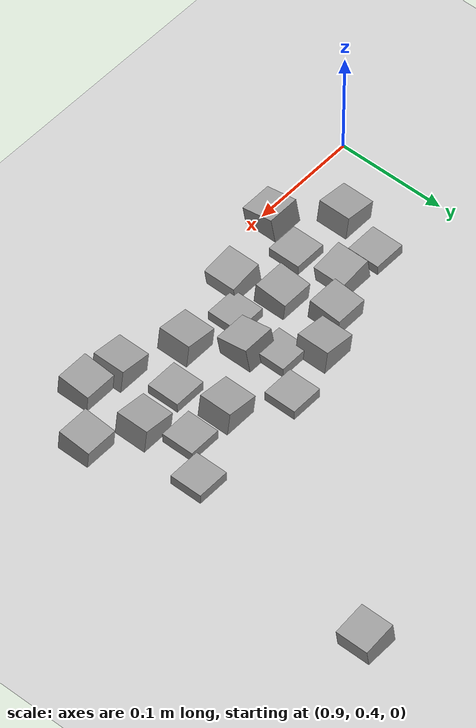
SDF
<sdf version="1.7">
 <world name="default">
  <model name="ground_plane">
   <static>1</static>
   <link name="link">
    <collision name="collision">
     <geometry><plane><normal>0 0 1</normal><size>100 100</size></plane></geometry>
     <surface><friction><ode><mu>100</mu><mu2>50</mu2></ode></friction></surface>
    </collision>
    <visual name="visual">
     <cast_shadows>0</cast_shadows>
     <geometry><plane><normal>0 0 1</normal><size>100 100</size></plane></geometry>
     <material>
      <script><uri>file://media/materials/scripts/gazebo.material</uri><name>Gazebo/Grey</name></script>
     </material>
    </visual>
   </link>
  </model>
  <model name="stone_road_0">
   <link name="link_0_clone_2_clone_5">
    <inertial>
     <mass>1</mass>
     <inertia>
      <ixx>0.166667</ixx>
      <ixy>0</ixy>
      <ixz>0</ixz>
      <iyy>0.166667</iyy>
      <iyz>0</iyz>
      <izz>0.166667</izz>
     </inertia>
    </inertial>
    <pose>-0.268485 0.053169 0.003778 0 0.15 0</pose>
    <kinematic>1</kinematic>
    <visual name="visual">
     <geometry><box><size>0.03 0.03 0.03</size></box></geometry>
     <material>
      <lighting>1</lighting>
      <script><uri>file://media/materials/scripts/gazebo.material</uri><name>Gazebo/Grey</name></script>
      <shader type="pixel"><normal_map>__default__</normal_map></shader>
      <ambient>0.3 0.3 0.3 1</ambient>
      <diffuse>0.7 0.7 0.7 1</diffuse>
      <specular>0.01 0.01 0.01 1</specular>
      <emissive>0 0 0 1</emissive>
     </material>
    </visual>
    <collision name="collision">
     <geometry><box><size>0.03 0.03 0.03</size></box></geometry>
     <surface>
      <friction>
       <ode><mu>1</mu><mu2>1</mu2><fdir1>0 0 0</fdir1><slip1>0</slip1><slip2>0</slip2></ode>
       <torsional>
        <coefficient>1</coefficient>
        <patch_radius>0</patch_radius>
        <surface_radius>0</surface_radius>
        <use_patch_radius>1</use_patch_radius>
        <ode><slip>0</slip></ode>
       </torsional>
      </friction>
      <bounce><restitution_coefficient>0</restitution_coefficient><threshold>1e+06</threshold></bounce>
      <contact>
       <collide_without_contact>0</collide_without_contact>
       <collide_without_contact_bitmask>1</collide_without_contact_bitmask>
       <collide_bitmask>1</collide_bitmask>
       <ode>
        <soft_cfm>0</soft_cfm>
        <soft_erp>0.2</soft_erp>
        <kp>1e+13</kp>
        <kd>1</kd>
        <max_vel>0.01</max_vel>
        <min_depth>0</min_depth>
       </ode>
       <bullet>
        <split_impulse>1</split_impulse>
        <split_impulse_penetration_threshold>-0.01</split_impulse_penetration_threshold>
        <soft_cfm>0</soft_cfm>
        <soft_erp>0.2</soft_erp>
        <kp>1e+13</kp>
        <kd>1</kd>
       </bullet>
      </contact>
     </surface>
    </collision>
   </link>
   <static>0</static>
   <pose>1.53544 0.679184 -0 0 -0 0</pose>
  </model>
  <model name="stone_road_11">
   <link name="link_0_clone_10">
    <inertial>
     <mass>1</mass>
     <inertia>
      <ixx>0.166667</ixx>
      <ixy>0</ixy>
      <ixz>0</ixz>
      <iyy>0.166667</iyy>
      <iyz>0</iyz>
      <izz>0.166667</izz>
     </inertia>
    </inertial>
    <pose>-0.01295 0.17123 0.003778 0.2 -0 0</pose>
    <kinematic>1</kinematic>
    <visual name="visual">
     <geometry><box><size>0.03 0.03 0.03</size></box></geometry>
     <material>
      <lighting>1</lighting>
      <script><uri>file://media/materials/scripts/gazebo.material</uri><name>Gazebo/Grey</name></script>
      <shader type="pixel"><normal_map>__default__</normal_map></shader>
      <ambient>0.3 0.3 0.3 1</ambient>
      <diffuse>0.7 0.7 0.7 1</diffuse>
      <specular>0.01 0.01 0.01 1</specular>
      <emissive>0 0 0 1</emissive>
     </material>
    </visual>
    <collision name="collision">
     <geometry><box><size>0.03 0.03 0.03</size></box></geometry>
     <surface>
      <friction>
       <ode><mu>1</mu><mu2>1</mu2><fdir1>0 0 0</fdir1><slip1>0</slip1><slip2>0</slip2></ode>
       <torsional>
        <coefficient>1</coefficient>
        <patch_radius>0</patch_radius>
        <surface_radius>0</surface_radius>
        <use_patch_radius>1</use_patch_radius>
        <ode><slip>0</slip></ode>
       </torsional>
      </friction>
      <bounce><restitution_coefficient>0</restitution_coefficient><threshold>1e+06</threshold></bounce>
      <contact>
       <collide_without_contact>0</collide_without_contact>
       <collide_without_contact_bitmask>1</collide_without_contact_bitmask>
       <collide_bitmask>1</collide_bitmask>
       <ode>
        <soft_cfm>0</soft_cfm>
        <soft_erp>0.2</soft_erp>
        <kp>1e+13</kp>
        <kd>1</kd>
        <max_vel>0.01</max_vel>
        <min_depth>0</min_depth>
       </ode>
       <bullet>
        <split_impulse>1</split_impulse>
        <split_impulse_penetration_threshold>-0.01</split_impulse_penetration_threshold>
        <soft_cfm>0</soft_cfm>
        <soft_erp>0.2</soft_erp>
        <kp>1e+13</kp>
        <kd>1</kd>
       </bullet>
      </contact>
     </surface>
    </collision>
   </link>
   <link name="link_0_clone_2_clone_2">
    <inertial>
     <mass>1</mass>
     <inertia>
      <ixx>0.166667</ixx>
      <ixy>0</ixy>
      <ixz>0</ixz>
      <iyy>0.166667</iyy>
      <iyz>0</iyz>
      <izz>0.166667</izz>
     </inertia>
    </inertial>
    <pose>0.066563 0.110568 0.003778 0 -0.15 0</pose>
    <kinematic>1</kinematic>
    <visual name="visual">
     <geometry><box><size>0.03 0.03 0.03</size></box></geometry>
     <material>
      <lighting>1</lighting>
      <script><uri>file://media/materials/scripts/gazebo.material</uri><name>Gazebo/Grey</name></script>
      <shader type="pixel"><normal_map>__default__</normal_map></shader>
      <ambient>0.3 0.3 0.3 1</ambient>
      <diffuse>0.7 0.7 0.7 1</diffuse>
      <specular>0.01 0.01 0.01 1</specular>
      <emissive>0 0 0 1</emissive>
     </material>
    </visual>
    <collision name="collision">
     <geometry><box><size>0.03 0.03 0.03</size></box></geometry>
     <surface>
      <friction>
       <ode><mu>1</mu><mu2>1</mu2><fdir1>0 0 0</fdir1><slip1>0</slip1><slip2>0</slip2></ode>
       <torsional>
        <coefficient>1</coefficient>
        <patch_radius>0</patch_radius>
        <surface_radius>0</surface_radius>
        <use_patch_radius>1</use_patch_radius>
        <ode><slip>0</slip></ode>
       </torsional>
      </friction>
      <bounce><restitution_coefficient>0</restitution_coefficient><threshold>1e+06</threshold></bounce>
      <contact>
       <collide_without_contact>0</collide_without_contact>
       <collide_without_contact_bitmask>1</collide_without_contact_bitmask>
       <collide_bitmask>1</collide_bitmask>
       <ode>
        <soft_cfm>0</soft_cfm>
        <soft_erp>0.2</soft_erp>
        <kp>1e+13</kp>
        <kd>1</kd>
        <max_vel>0.01</max_vel>
        <min_depth>0</min_depth>
       </ode>
       <bullet>
        <split_impulse>1</split_impulse>
        <split_impulse_penetration_threshold>-0.01</split_impulse_penetration_threshold>
        <soft_cfm>0</soft_cfm>
        <soft_erp>0.2</soft_erp>
        <kp>1e+13</kp>
        <kd>1</kd>
       </bullet>
      </contact>
     </surface>
    </collision>
   </link>
   <link name="link_0_clone_2_clone_2_clone_10">
    <inertial>
     <mass>1</mass>
     <inertia>
      <ixx>0.166667</ixx>
      <ixy>0</ixy>
      <ixz>0</ixz>
      <iyy>0.166667</iyy>
      <iyz>0</iyz>
      <izz>0.166667</izz>
     </inertia>
    </inertial>
    <pose>0.09869 0.163436 0.003778 0 -0.15 0</pose>
    <kinematic>1</kinematic>
    <visual name="visual">
     <geometry><box><size>0.03 0.03 0.03</size></box></geometry>
     <material>
      <lighting>1</lighting>
      <script><uri>file://media/materials/scripts/gazebo.material</uri><name>Gazebo/Grey</name></script>
      <shader type="pixel"><normal_map>__default__</normal_map></shader>
      <ambient>0.3 0.3 0.3 1</ambient>
      <diffuse>0.7 0.7 0.7 1</diffuse>
      <specular>0.01 0.01 0.01 1</specular>
      <emissive>0 0 0 1</emissive>
     </material>
    </visual>
    <collision name="collision">
     <geometry><box><size>0.03 0.03 0.03</size></box></geometry>
     <surface>
      <friction>
       <ode><mu>1</mu><mu2>1</mu2><fdir1>0 0 0</fdir1><slip1>0</slip1><slip2>0</slip2></ode>
       <torsional>
        <coefficient>1</coefficient>
        <patch_radius>0</patch_radius>
        <surface_radius>0</surface_radius>
        <use_patch_radius>1</use_patch_radius>
        <ode><slip>0</slip></ode>
       </torsional>
      </friction>
      <bounce><restitution_coefficient>0</restitution_coefficient><threshold>1e+06</threshold></bounce>
      <contact>
       <collide_without_contact>0</collide_without_contact>
       <collide_without_contact_bitmask>1</collide_without_contact_bitmask>
       <collide_bitmask>1</collide_bitmask>
       <ode>
        <soft_cfm>0</soft_cfm>
        <soft_erp>0.2</soft_erp>
        <kp>1e+13</kp>
        <kd>1</kd>
        <max_vel>0.01</max_vel>
        <min_depth>0</min_depth>
       </ode>
       <bullet>
        <split_impulse>1</split_impulse>
        <split_impulse_penetration_threshold>-0.01</split_impulse_penetration_threshold>
        <soft_cfm>0</soft_cfm>
        <soft_erp>0.2</soft_erp>
        <kp>1e+13</kp>
        <kd>1</kd>
       </bullet>
      </contact>
     </surface>
    </collision>
   </link>
   <link name="link_0_clone_2_clone_2_clone_11">
    <inertial>
     <mass>1</mass>
     <inertia>
      <ixx>0.166667</ixx>
      <ixy>0</ixy>
      <ixz>0</ixz>
      <iyy>0.166667</iyy>
      <iyz>0</iyz>
      <izz>0.166667</izz>
     </inertia>
    </inertial>
    <pose>-0.050382 0.216558 0.003778 0 -0.15 0</pose>
    <kinematic>1</kinematic>
    <visual name="visual">
     <geometry><box><size>0.03 0.03 0.03</size></box></geometry>
     <material>
      <lighting>1</lighting>
      <script><uri>file://media/materials/scripts/gazebo.material</uri><name>Gazebo/Grey</name></script>
      <shader type="pixel"><normal_map>__default__</normal_map></shader>
      <ambient>0.3 0.3 0.3 1</ambient>
      <diffuse>0.7 0.7 0.7 1</diffuse>
      <specular>0.01 0.01 0.01 1</specular>
      <emissive>0 0 0 1</emissive>
     </material>
    </visual>
    <collision name="collision">
     <geometry><box><size>0.03 0.03 0.03</size></box></geometry>
     <surface>
      <friction>
       <ode><mu>1</mu><mu2>1</mu2><fdir1>0 0 0</fdir1><slip1>0</slip1><slip2>0</slip2></ode>
       <torsional>
        <coefficient>1</coefficient>
        <patch_radius>0</patch_radius>
        <surface_radius>0</surface_radius>
        <use_patch_radius>1</use_patch_radius>
        <ode><slip>0</slip></ode>
       </torsional>
      </friction>
      <bounce><restitution_coefficient>0</restitution_coefficient><threshold>1e+06</threshold></bounce>
      <contact>
       <collide_without_contact>0</collide_without_contact>
       <collide_without_contact_bitmask>1</collide_without_contact_bitmask>
       <collide_bitmask>1</collide_bitmask>
       <ode>
        <soft_cfm>0</soft_cfm>
        <soft_erp>0.2</soft_erp>
        <kp>1e+13</kp>
        <kd>1</kd>
        <max_vel>0.01</max_vel>
        <min_depth>0</min_depth>
       </ode>
       <bullet>
        <split_impulse>1</split_impulse>
        <split_impulse_penetration_threshold>-0.01</split_impulse_penetration_threshold>
        <soft_cfm>0</soft_cfm>
        <soft_erp>0.2</soft_erp>
        <kp>1e+13</kp>
        <kd>1</kd>
       </bullet>
      </contact>
     </surface>
    </collision>
   </link>
   <link name="link_0_clone_2_clone_2_clone_12">
    <inertial>
     <mass>1</mass>
     <inertia>
      <ixx>0.166667</ixx>
      <ixy>0</ixy>
      <ixz>0</ixz>
      <iyy>0.166667</iyy>
      <iyz>0</iyz>
      <izz>0.166667</izz>
     </inertia>
    </inertial>
    <pose>0.044693 0.200081 0.003778 0 -0.15 0</pose>
    <kinematic>1</kinematic>
    <visual name="visual">
     <geometry><box><size>0.03 0.03 0.03</size></box></geometry>
     <material>
      <lighting>1</lighting>
      <script><uri>file://media/materials/scripts/gazebo.material</uri><name>Gazebo/Grey</name></script>
      <shader type="pixel"><normal_map>__default__</normal_map></shader>
      <ambient>0.3 0.3 0.3 1</ambient>
      <diffuse>0.7 0.7 0.7 1</diffuse>
      <specular>0.01 0.01 0.01 1</specular>
      <emissive>0 0 0 1</emissive>
     </material>
    </visual>
    <collision name="collision">
     <geometry><box><size>0.03 0.03 0.03</size></box></geometry>
     <surface>
      <friction>
       <ode><mu>1</mu><mu2>1</mu2><fdir1>0 0 0</fdir1><slip1>0</slip1><slip2>0</slip2></ode>
       <torsional>
        <coefficient>1</coefficient>
        <patch_radius>0</patch_radius>
        <surface_radius>0</surface_radius>
        <use_patch_radius>1</use_patch_radius>
        <ode><slip>0</slip></ode>
       </torsional>
      </friction>
      <bounce><restitution_coefficient>0</restitution_coefficient><threshold>1e+06</threshold></bounce>
      <contact>
       <collide_without_contact>0</collide_without_contact>
       <collide_without_contact_bitmask>1</collide_without_contact_bitmask>
       <collide_bitmask>1</collide_bitmask>
       <ode>
        <soft_cfm>0</soft_cfm>
        <soft_erp>0.2</soft_erp>
        <kp>1e+13</kp>
        <kd>1</kd>
        <max_vel>0.01</max_vel>
        <min_depth>0</min_depth>
       </ode>
       <bullet>
        <split_impulse>1</split_impulse>
        <split_impulse_penetration_threshold>-0.01</split_impulse_penetration_threshold>
        <soft_cfm>0</soft_cfm>
        <soft_erp>0.2</soft_erp>
        <kp>1e+13</kp>
        <kd>1</kd>
       </bullet>
      </contact>
     </surface>
    </collision>
   </link>
   <link name="link_0_clone_2_clone_2_clone_13">
    <inertial>
     <mass>1</mass>
     <inertia>
      <ixx>0.166667</ixx>
      <ixy>0</ixy>
      <ixz>0</ixz>
      <iyy>0.166667</iyy>
      <iyz>0</iyz>
      <izz>0.166667</izz>
     </inertia>
    </inertial>
    <pose>0.014407 0.13189 0.003778 0 -0.15 0</pose>
    <kinematic>1</kinematic>
    <visual name="visual">
     <geometry><box><size>0.03 0.03 0.03</size></box></geometry>
     <material>
      <lighting>1</lighting>
      <script><uri>file://media/materials/scripts/gazebo.material</uri><name>Gazebo/Grey</name></script>
      <shader type="pixel"><normal_map>__default__</normal_map></shader>
      <ambient>0.3 0.3 0.3 1</ambient>
      <diffuse>0.7 0.7 0.7 1</diffuse>
      <specular>0.01 0.01 0.01 1</specular>
      <emissive>0 0 0 1</emissive>
     </material>
    </visual>
    <collision name="collision">
     <geometry><box><size>0.03 0.03 0.03</size></box></geometry>
     <surface>
      <friction>
       <ode><mu>1</mu><mu2>1</mu2><fdir1>0 0 0</fdir1><slip1>0</slip1><slip2>0</slip2></ode>
       <torsional>
        <coefficient>1</coefficient>
        <patch_radius>0</patch_radius>
        <surface_radius>0</surface_radius>
        <use_patch_radius>1</use_patch_radius>
        <ode><slip>0</slip></ode>
       </torsional>
      </friction>
      <bounce><restitution_coefficient>0</restitution_coefficient><threshold>1e+06</threshold></bounce>
      <contact>
       <collide_without_contact>0</collide_without_contact>
       <collide_without_contact_bitmask>1</collide_without_contact_bitmask>
       <collide_bitmask>1</collide_bitmask>
       <ode>
        <soft_cfm>0</soft_cfm>
        <soft_erp>0.2</soft_erp>
        <kp>1e+13</kp>
        <kd>1</kd>
        <max_vel>0.01</max_vel>
        <min_depth>0</min_depth>
       </ode>
       <bullet>
        <split_impulse>1</split_impulse>
        <split_impulse_penetration_threshold>-0.01</split_impulse_penetration_threshold>
        <soft_cfm>0</soft_cfm>
        <soft_erp>0.2</soft_erp>
        <kp>1e+13</kp>
        <kd>1</kd>
       </bullet>
      </contact>
     </surface>
    </collision>
   </link>
   <link name="link_0_clone_2_clone_2_clone_13_clone">
    <inertial>
     <mass>1</mass>
     <inertia>
      <ixx>0.166667</ixx>
      <ixy>0</ixy>
      <ixz>0</ixz>
      <iyy>0.166667</iyy>
      <iyz>0</iyz>
      <izz>0.166667</izz>
     </inertia>
    </inertial>
    <pose>0.138846 0.140956 0.003778 -0.1 0 0</pose>
    <kinematic>1</kinematic>
    <visual name="visual">
     <geometry><box><size>0.03 0.03 0.03</size></box></geometry>
     <material>
      <lighting>1</lighting>
      <script><uri>file://media/materials/scripts/gazebo.material</uri><name>Gazebo/Grey</name></script>
      <shader type="pixel"><normal_map>__default__</normal_map></shader>
      <ambient>0.3 0.3 0.3 1</ambient>
      <diffuse>0.7 0.7 0.7 1</diffuse>
      <specular>0.01 0.01 0.01 1</specular>
      <emissive>0 0 0 1</emissive>
     </material>
    </visual>
    <collision name="collision">
     <geometry><box><size>0.03 0.03 0.03</size></box></geometry>
     <surface>
      <friction>
       <ode><mu>1</mu><mu2>1</mu2><fdir1>0 0 0</fdir1><slip1>0</slip1><slip2>0</slip2></ode>
       <torsional>
        <coefficient>1</coefficient>
        <patch_radius>0</patch_radius>
        <surface_radius>0</surface_radius>
        <use_patch_radius>1</use_patch_radius>
        <ode><slip>0</slip></ode>
       </torsional>
      </friction>
      <bounce><restitution_coefficient>0</restitution_coefficient><threshold>1e+06</threshold></bounce>
      <contact>
       <collide_without_contact>0</collide_without_contact>
       <collide_without_contact_bitmask>1</collide_without_contact_bitmask>
       <collide_bitmask>1</collide_bitmask>
       <ode>
        <soft_cfm>0</soft_cfm>
        <soft_erp>0.2</soft_erp>
        <kp>1e+13</kp>
        <kd>1</kd>
        <max_vel>0.01</max_vel>
        <min_depth>0</min_depth>
       </ode>
       <bullet>
        <split_impulse>1</split_impulse>
        <split_impulse_penetration_threshold>-0.01</split_impulse_penetration_threshold>
        <soft_cfm>0</soft_cfm>
        <soft_erp>0.2</soft_erp>
        <kp>1e+13</kp>
        <kd>1</kd>
       </bullet>
      </contact>
     </surface>
    </collision>
   </link>
   <link name="link_0_clone_2_clone_2_clone_13_clone_clone_1">
    <inertial>
     <mass>1</mass>
     <inertia>
      <ixx>0.166667</ixx>
      <ixy>0</ixy>
      <ixz>0</ixz>
      <iyy>0.166667</iyy>
      <iyz>0</iyz>
      <izz>0.166667</izz>
     </inertia>
    </inertial>
    <pose>0.098415 0.103772 0.003778 -0.1 0 0</pose>
    <kinematic>1</kinematic>
    <visual name="visual">
     <geometry><box><size>0.03 0.03 0.03</size></box></geometry>
     <material>
      <lighting>1</lighting>
      <script><uri>file://media/materials/scripts/gazebo.material</uri><name>Gazebo/Grey</name></script>
      <shader type="pixel"><normal_map>__default__</normal_map></shader>
      <ambient>0.3 0.3 0.3 1</ambient>
      <diffuse>0.7 0.7 0.7 1</diffuse>
      <specular>0.01 0.01 0.01 1</specular>
      <emissive>0 0 0 1</emissive>
     </material>
    </visual>
    <collision name="collision">
     <geometry><box><size>0.03 0.03 0.03</size></box></geometry>
     <surface>
      <friction>
       <ode><mu>1</mu><mu2>1</mu2><fdir1>0 0 0</fdir1><slip1>0</slip1><slip2>0</slip2></ode>
       <torsional>
        <coefficient>1</coefficient>
        <patch_radius>0</patch_radius>
        <surface_radius>0</surface_radius>
        <use_patch_radius>1</use_patch_radius>
        <ode><slip>0</slip></ode>
       </torsional>
      </friction>
      <bounce><restitution_coefficient>0</restitution_coefficient><threshold>1e+06</threshold></bounce>
      <contact>
       <collide_without_contact>0</collide_without_contact>
       <collide_without_contact_bitmask>1</collide_without_contact_bitmask>
       <collide_bitmask>1</collide_bitmask>
       <ode>
        <soft_cfm>0</soft_cfm>
        <soft_erp>0.2</soft_erp>
        <kp>1e+13</kp>
        <kd>1</kd>
        <max_vel>0.01</max_vel>
        <min_depth>0</min_depth>
       </ode>
       <bullet>
        <split_impulse>1</split_impulse>
        <split_impulse_penetration_threshold>-0.01</split_impulse_penetration_threshold>
        <soft_cfm>0</soft_cfm>
        <soft_erp>0.2</soft_erp>
        <kp>1e+13</kp>
        <kd>1</kd>
       </bullet>
      </contact>
     </surface>
    </collision>
   </link>
   <link name="link_0_clone_2_clone_2_clone_13_clone_clone_13">
    <inertial>
     <mass>1</mass>
     <inertia>
      <ixx>0.166667</ixx>
      <ixy>0</ixy>
      <ixz>0</ixz>
      <iyy>0.166667</iyy>
      <iyz>0</iyz>
      <izz>0.166667</izz>
     </inertia>
    </inertial>
    <pose>-0.069861 0.157394 0.003778 -0.1 0 0</pose>
    <kinematic>1</kinematic>
    <visual name="visual">
     <geometry><box><size>0.03 0.03 0.03</size></box></geometry>
     <material>
      <lighting>1</lighting>
      <script><uri>file://media/materials/scripts/gazebo.material</uri><name>Gazebo/Grey</name></script>
      <shader type="pixel"><normal_map>__default__</normal_map></shader>
      <ambient>0.3 0.3 0.3 1</ambient>
      <diffuse>0.7 0.7 0.7 1</diffuse>
      <specular>0.01 0.01 0.01 1</specular>
      <emissive>0 0 0 1</emissive>
     </material>
    </visual>
    <collision name="collision">
     <geometry><box><size>0.03 0.03 0.03</size></box></geometry>
     <surface>
      <friction>
       <ode><mu>1</mu><mu2>1</mu2><fdir1>0 0 0</fdir1><slip1>0</slip1><slip2>0</slip2></ode>
       <torsional>
        <coefficient>1</coefficient>
        <patch_radius>0</patch_radius>
        <surface_radius>0</surface_radius>
        <use_patch_radius>1</use_patch_radius>
        <ode><slip>0</slip></ode>
       </torsional>
      </friction>
      <bounce><restitution_coefficient>0</restitution_coefficient><threshold>1e+06</threshold></bounce>
      <contact>
       <collide_without_contact>0</collide_without_contact>
       <collide_without_contact_bitmask>1</collide_without_contact_bitmask>
       <collide_bitmask>1</collide_bitmask>
       <ode>
        <soft_cfm>0</soft_cfm>
        <soft_erp>0.2</soft_erp>
        <kp>1e+13</kp>
        <kd>1</kd>
        <max_vel>0.01</max_vel>
        <min_depth>0</min_depth>
       </ode>
       <bullet>
        <split_impulse>1</split_impulse>
        <split_impulse_penetration_threshold>-0.01</split_impulse_penetration_threshold>
        <soft_cfm>0</soft_cfm>
        <soft_erp>0.2</soft_erp>
        <kp>1e+13</kp>
        <kd>1</kd>
       </bullet>
      </contact>
     </surface>
    </collision>
   </link>
   <link name="link_0_clone_2_clone_2_clone_13_clone_clone_15">
    <inertial>
     <mass>1</mass>
     <inertia>
      <ixx>0.166667</ixx>
      <ixy>0</ixy>
      <ixz>0</ixz>
      <iyy>0.166667</iyy>
      <iyz>0</iyz>
      <izz>0.166667</izz>
     </inertia>
    </inertial>
    <pose>-0.084893 0.19984 0.003778 -0.1 0 0</pose>
    <kinematic>1</kinematic>
    <visual name="visual">
     <geometry><box><size>0.03 0.03 0.03</size></box></geometry>
     <material>
      <lighting>1</lighting>
      <script><uri>file://media/materials/scripts/gazebo.material</uri><name>Gazebo/Grey</name></script>
      <shader type="pixel"><normal_map>__default__</normal_map></shader>
      <ambient>0.3 0.3 0.3 1</ambient>
      <diffuse>0.7 0.7 0.7 1</diffuse>
      <specular>0.01 0.01 0.01 1</specular>
      <emissive>0 0 0 1</emissive>
     </material>
    </visual>
    <collision name="collision">
     <geometry><box><size>0.03 0.03 0.03</size></box></geometry>
     <surface>
      <friction>
       <ode><mu>1</mu><mu2>1</mu2><fdir1>0 0 0</fdir1><slip1>0</slip1><slip2>0</slip2></ode>
       <torsional>
        <coefficient>1</coefficient>
        <patch_radius>0</patch_radius>
        <surface_radius>0</surface_radius>
        <use_patch_radius>1</use_patch_radius>
        <ode><slip>0</slip></ode>
       </torsional>
      </friction>
      <bounce><restitution_coefficient>0</restitution_coefficient><threshold>1e+06</threshold></bounce>
      <contact>
       <collide_without_contact>0</collide_without_contact>
       <collide_without_contact_bitmask>1</collide_without_contact_bitmask>
       <collide_bitmask>1</collide_bitmask>
       <ode>
        <soft_cfm>0</soft_cfm>
        <soft_erp>0.2</soft_erp>
        <kp>1e+13</kp>
        <kd>1</kd>
        <max_vel>0.01</max_vel>
        <min_depth>0</min_depth>
       </ode>
       <bullet>
        <split_impulse>1</split_impulse>
        <split_impulse_penetration_threshold>-0.01</split_impulse_penetration_threshold>
        <soft_cfm>0</soft_cfm>
        <soft_erp>0.2</soft_erp>
        <kp>1e+13</kp>
        <kd>1</kd>
       </bullet>
      </contact>
     </surface>
    </collision>
   </link>
   <link name="link_0_clone_2_clone_2_clone_13_clone_clone_16">
    <inertial>
     <mass>1</mass>
     <inertia>
      <ixx>0.166667</ixx>
      <ixy>0</ixy>
      <ixz>0</ixz>
      <iyy>0.166667</iyy>
      <iyz>0</iyz>
      <izz>0.166667</izz>
     </inertia>
    </inertial>
    <pose>0.108948 0.22849 -0.006222 0 -0 0</pose>
    <kinematic>1</kinematic>
    <visual name="visual">
     <geometry><box><size>0.03 0.03 0.03</size></box></geometry>
     <material>
      <lighting>1</lighting>
      <script><uri>file://media/materials/scripts/gazebo.material</uri><name>Gazebo/Grey</name></script>
      <shader type="pixel"><normal_map>__default__</normal_map></shader>
      <ambient>0.3 0.3 0.3 1</ambient>
      <diffuse>0.7 0.7 0.7 1</diffuse>
      <specular>0.01 0.01 0.01 1</specular>
      <emissive>0 0 0 1</emissive>
     </material>
    </visual>
    <collision name="collision">
     <geometry><box><size>0.03 0.03 0.03</size></box></geometry>
     <surface>
      <friction>
       <ode><mu>1</mu><mu2>1</mu2><fdir1>0 0 0</fdir1><slip1>0</slip1><slip2>0</slip2></ode>
       <torsional>
        <coefficient>1</coefficient>
        <patch_radius>0</patch_radius>
        <surface_radius>0</surface_radius>
        <use_patch_radius>1</use_patch_radius>
        <ode><slip>0</slip></ode>
       </torsional>
      </friction>
      <bounce><restitution_coefficient>0</restitution_coefficient><threshold>1e+06</threshold></bounce>
      <contact>
       <collide_without_contact>0</collide_without_contact>
       <collide_without_contact_bitmask>1</collide_without_contact_bitmask>
       <collide_bitmask>1</collide_bitmask>
       <ode>
        <soft_cfm>0</soft_cfm>
        <soft_erp>0.2</soft_erp>
        <kp>1e+13</kp>
        <kd>1</kd>
        <max_vel>0.01</max_vel>
        <min_depth>0</min_depth>
       </ode>
       <bullet>
        <split_impulse>1</split_impulse>
        <split_impulse_penetration_threshold>-0.01</split_impulse_penetration_threshold>
        <soft_cfm>0</soft_cfm>
        <soft_erp>0.2</soft_erp>
        <kp>1e+13</kp>
        <kd>1</kd>
       </bullet>
      </contact>
     </surface>
    </collision>
   </link>
   <link name="link_0_clone_2_clone_2_clone_13_clone_clone_16_clone">
    <inertial>
     <mass>1</mass>
     <inertia>
      <ixx>0.166667</ixx>
      <ixy>0</ixy>
      <ixz>0</ixz>
      <iyy>0.166667</iyy>
      <iyz>0</iyz>
      <izz>0.166667</izz>
     </inertia>
    </inertial>
    <pose>0.0535 0.156403 -0.006222 0 -0 0</pose>
    <kinematic>1</kinematic>
    <visual name="visual">
     <geometry><box><size>0.03 0.03 0.03</size></box></geometry>
     <material>
      <lighting>1</lighting>
      <script><uri>file://media/materials/scripts/gazebo.material</uri><name>Gazebo/Grey</name></script>
      <shader type="pixel"><normal_map>__default__</normal_map></shader>
      <ambient>0.3 0.3 0.3 1</ambient>
      <diffuse>0.7 0.7 0.7 1</diffuse>
      <specular>0.01 0.01 0.01 1</specular>
      <emissive>0 0 0 1</emissive>
     </material>
    </visual>
    <collision name="collision">
     <geometry><box><size>0.03 0.03 0.03</size></box></geometry>
     <surface>
      <friction>
       <ode><mu>1</mu><mu2>1</mu2><fdir1>0 0 0</fdir1><slip1>0</slip1><slip2>0</slip2></ode>
       <torsional>
        <coefficient>1</coefficient>
        <patch_radius>0</patch_radius>
        <surface_radius>0</surface_radius>
        <use_patch_radius>1</use_patch_radius>
        <ode><slip>0</slip></ode>
       </torsional>
      </friction>
      <bounce><restitution_coefficient>0</restitution_coefficient><threshold>1e+06</threshold></bounce>
      <contact>
       <collide_without_contact>0</collide_without_contact>
       <collide_without_contact_bitmask>1</collide_without_contact_bitmask>
       <collide_bitmask>1</collide_bitmask>
       <ode>
        <soft_cfm>0</soft_cfm>
        <soft_erp>0.2</soft_erp>
        <kp>1e+13</kp>
        <kd>1</kd>
        <max_vel>0.01</max_vel>
        <min_depth>0</min_depth>
       </ode>
       <bullet>
        <split_impulse>1</split_impulse>
        <split_impulse_penetration_threshold>-0.01</split_impulse_penetration_threshold>
        <soft_cfm>0</soft_cfm>
        <soft_erp>0.2</soft_erp>
        <kp>1e+13</kp>
        <kd>1</kd>
       </bullet>
      </contact>
     </surface>
    </collision>
   </link>
   <link name="link_0_clone_2_clone_2_clone_13_clone_clone_16_clone_21">
    <inertial>
     <mass>1</mass>
     <inertia>
      <ixx>0.166667</ixx>
      <ixy>0</ixy>
      <ixz>0</ixz>
      <iyy>0.166667</iyy>
      <iyz>0</iyz>
      <izz>0.166667</izz>
     </inertia>
    </inertial>
    <pose>-0.032398 0.142589 -0.006222 0 -0 0</pose>
    <kinematic>1</kinematic>
    <visual name="visual">
     <geometry><box><size>0.03 0.03 0.03</size></box></geometry>
     <material>
      <lighting>1</lighting>
      <script><uri>file://media/materials/scripts/gazebo.material</uri><name>Gazebo/Grey</name></script>
      <shader type="pixel"><normal_map>__default__</normal_map></shader>
      <ambient>0.3 0.3 0.3 1</ambient>
      <diffuse>0.7 0.7 0.7 1</diffuse>
      <specular>0.01 0.01 0.01 1</specular>
      <emissive>0 0 0 1</emissive>
     </material>
    </visual>
    <collision name="collision">
     <geometry><box><size>0.03 0.03 0.03</size></box></geometry>
     <surface>
      <friction>
       <ode><mu>1</mu><mu2>1</mu2><fdir1>0 0 0</fdir1><slip1>0</slip1><slip2>0</slip2></ode>
       <torsional>
        <coefficient>1</coefficient>
        <patch_radius>0</patch_radius>
        <surface_radius>0</surface_radius>
        <use_patch_radius>1</use_patch_radius>
        <ode><slip>0</slip></ode>
       </torsional>
      </friction>
      <bounce><restitution_coefficient>0</restitution_coefficient><threshold>1e+06</threshold></bounce>
      <contact>
       <collide_without_contact>0</collide_without_contact>
       <collide_without_contact_bitmask>1</collide_without_contact_bitmask>
       <collide_bitmask>1</collide_bitmask>
       <ode>
        <soft_cfm>0</soft_cfm>
        <soft_erp>0.2</soft_erp>
        <kp>1e+13</kp>
        <kd>1</kd>
        <max_vel>0.01</max_vel>
        <min_depth>0</min_depth>
       </ode>
       <bullet>
        <split_impulse>1</split_impulse>
        <split_impulse_penetration_threshold>-0.01</split_impulse_penetration_threshold>
        <soft_cfm>0</soft_cfm>
        <soft_erp>0.2</soft_erp>
        <kp>1e+13</kp>
        <kd>1</kd>
       </bullet>
      </contact>
     </surface>
    </collision>
   </link>
   <link name="link_0_clone_2_clone_2_clone_13_clone_clone_16_clone_22">
    <inertial>
     <mass>1</mass>
     <inertia>
      <ixx>0.166667</ixx>
      <ixy>0</ixy>
      <ixz>0</ixz>
      <iyy>0.166667</iyy>
      <iyz>0</iyz>
      <izz>0.166667</izz>
     </inertia>
    </inertial>
    <pose>-0.025872 0.194724 -0.006222 0 -0 0</pose>
    <kinematic>1</kinematic>
    <visual name="visual">
     <geometry><box><size>0.03 0.03 0.03</size></box></geometry>
     <material>
      <lighting>1</lighting>
      <script><uri>file://media/materials/scripts/gazebo.material</uri><name>Gazebo/Grey</name></script>
      <shader type="pixel"><normal_map>__default__</normal_map></shader>
      <ambient>0.3 0.3 0.3 1</ambient>
      <diffuse>0.7 0.7 0.7 1</diffuse>
      <specular>0.01 0.01 0.01 1</specular>
      <emissive>0 0 0 1</emissive>
     </material>
    </visual>
    <collision name="collision">
     <geometry><box><size>0.03 0.03 0.03</size></box></geometry>
     <surface>
      <friction>
       <ode><mu>1</mu><mu2>1</mu2><fdir1>0 0 0</fdir1><slip1>0</slip1><slip2>0</slip2></ode>
       <torsional>
        <coefficient>1</coefficient>
        <patch_radius>0</patch_radius>
        <surface_radius>0</surface_radius>
        <use_patch_radius>1</use_patch_radius>
        <ode><slip>0</slip></ode>
       </torsional>
      </friction>
      <bounce><restitution_coefficient>0</restitution_coefficient><threshold>1e+06</threshold></bounce>
      <contact>
       <collide_without_contact>0</collide_without_contact>
       <collide_without_contact_bitmask>1</collide_without_contact_bitmask>
       <collide_bitmask>1</collide_bitmask>
       <ode>
        <soft_cfm>0</soft_cfm>
        <soft_erp>0.2</soft_erp>
        <kp>1e+13</kp>
        <kd>1</kd>
        <max_vel>0.01</max_vel>
        <min_depth>0</min_depth>
       </ode>
       <bullet>
        <split_impulse>1</split_impulse>
        <split_impulse_penetration_threshold>-0.01</split_impulse_penetration_threshold>
        <soft_cfm>0</soft_cfm>
        <soft_erp>0.2</soft_erp>
        <kp>1e+13</kp>
        <kd>1</kd>
       </bullet>
      </contact>
     </surface>
    </collision>
   </link>
   <link name="link_0_clone_2_clone_2_clone_13_clone_clone_16_clone_23">
    <inertial>
     <mass>1</mass>
     <inertia>
      <ixx>0.166667</ixx>
      <ixy>0</ixy>
      <ixz>0</ixz>
      <iyy>0.166667</iyy>
      <iyz>0</iyz>
      <izz>0.166667</izz>
     </inertia>
    </inertial>
    <pose>0.000385 0.228664 -0.006222 0 -0 0</pose>
    <kinematic>1</kinematic>
    <visual name="visual">
     <geometry><box><size>0.03 0.03 0.03</size></box></geometry>
     <material>
      <lighting>1</lighting>
      <script><uri>file://media/materials/scripts/gazebo.material</uri><name>Gazebo/Grey</name></script>
      <shader type="pixel"><normal_map>__default__</normal_map></shader>
      <ambient>0.3 0.3 0.3 1</ambient>
      <diffuse>0.7 0.7 0.7 1</diffuse>
      <specular>0.01 0.01 0.01 1</specular>
      <emissive>0 0 0 1</emissive>
     </material>
    </visual>
    <collision name="collision">
     <geometry><box><size>0.03 0.03 0.03</size></box></geometry>
     <surface>
      <friction>
       <ode><mu>1</mu><mu2>1</mu2><fdir1>0 0 0</fdir1><slip1>0</slip1><slip2>0</slip2></ode>
       <torsional>
        <coefficient>1</coefficient>
        <patch_radius>0</patch_radius>
        <surface_radius>0</surface_radius>
        <use_patch_radius>1</use_patch_radius>
        <ode><slip>0</slip></ode>
       </torsional>
      </friction>
      <bounce><restitution_coefficient>0</restitution_coefficient><threshold>1e+06</threshold></bounce>
      <contact>
       <collide_without_contact>0</collide_without_contact>
       <collide_without_contact_bitmask>1</collide_without_contact_bitmask>
       <collide_bitmask>1</collide_bitmask>
       <ode>
        <soft_cfm>0</soft_cfm>
        <soft_erp>0.2</soft_erp>
        <kp>1e+13</kp>
        <kd>1</kd>
        <max_vel>0.01</max_vel>
        <min_depth>0</min_depth>
       </ode>
       <bullet>
        <split_impulse>1</split_impulse>
        <split_impulse_penetration_threshold>-0.01</split_impulse_penetration_threshold>
        <soft_cfm>0</soft_cfm>
        <soft_erp>0.2</soft_erp>
        <kp>1e+13</kp>
        <kd>1</kd>
       </bullet>
      </contact>
     </surface>
    </collision>
   </link>
   <link name="link_0_clone_2_clone_2_clone_13_clone_clone_16_clone_24">
    <inertial>
     <mass>1</mass>
     <inertia>
      <ixx>0.166667</ixx>
      <ixy>0</ixy>
      <ixz>0</ixz>
      <iyy>0.166667</iyy>
      <iyz>0</iyz>
      <izz>0.166667</izz>
     </inertia>
    </inertial>
    <pose>0.08246 0.196776 -0.006222 0 -0 0</pose>
    <kinematic>1</kinematic>
    <visual name="visual">
     <geometry><box><size>0.03 0.03 0.03</size></box></geometry>
     <material>
      <lighting>1</lighting>
      <script><uri>file://media/materials/scripts/gazebo.material</uri><name>Gazebo/Grey</name></script>
      <shader type="pixel"><normal_map>__default__</normal_map></shader>
      <ambient>0.3 0.3 0.3 1</ambient>
      <diffuse>0.7 0.7 0.7 1</diffuse>
      <specular>0.01 0.01 0.01 1</specular>
      <emissive>0 0 0 1</emissive>
     </material>
    </visual>
    <collision name="collision">
     <geometry><box><size>0.03 0.03 0.03</size></box></geometry>
     <surface>
      <friction>
       <ode><mu>1</mu><mu2>1</mu2><fdir1>0 0 0</fdir1><slip1>0</slip1><slip2>0</slip2></ode>
       <torsional>
        <coefficient>1</coefficient>
        <patch_radius>0</patch_radius>
        <surface_radius>0</surface_radius>
        <use_patch_radius>1</use_patch_radius>
        <ode><slip>0</slip></ode>
       </torsional>
      </friction>
      <bounce><restitution_coefficient>0</restitution_coefficient><threshold>1e+06</threshold></bounce>
      <contact>
       <collide_without_contact>0</collide_without_contact>
       <collide_without_contact_bitmask>1</collide_without_contact_bitmask>
       <collide_bitmask>1</collide_bitmask>
       <ode>
        <soft_cfm>0</soft_cfm>
        <soft_erp>0.2</soft_erp>
        <kp>1e+13</kp>
        <kd>1</kd>
        <max_vel>0.01</max_vel>
        <min_depth>0</min_depth>
       </ode>
       <bullet>
        <split_impulse>1</split_impulse>
        <split_impulse_penetration_threshold>-0.01</split_impulse_penetration_threshold>
        <soft_cfm>0</soft_cfm>
        <soft_erp>0.2</soft_erp>
        <kp>1e+13</kp>
        <kd>1</kd>
       </bullet>
      </contact>
     </surface>
    </collision>
   </link>
   <link name="link_0_clone_2_clone_2_clone_13_clone_clone_16_clone_25">
    <inertial>
     <mass>1</mass>
     <inertia>
      <ixx>0.166667</ixx>
      <ixy>0</ixy>
      <ixz>0</ixz>
      <iyy>0.166667</iyy>
      <iyz>0</iyz>
      <izz>0.166667</izz>
     </inertia>
    </inertial>
    <pose>-0.15326 0.182661 -0.006222 0 -0 0</pose>
    <kinematic>1</kinematic>
    <visual name="visual">
     <geometry><box><size>0.03 0.03 0.03</size></box></geometry>
     <material>
      <lighting>1</lighting>
      <script><uri>file://media/materials/scripts/gazebo.material</uri><name>Gazebo/Grey</name></script>
      <shader type="pixel"><normal_map>__default__</normal_map></shader>
      <ambient>0.3 0.3 0.3 1</ambient>
      <diffuse>0.7 0.7 0.7 1</diffuse>
      <specular>0.01 0.01 0.01 1</specular>
      <emissive>0 0 0 1</emissive>
     </material>
    </visual>
    <collision name="collision">
     <geometry><box><size>0.03 0.03 0.03</size></box></geometry>
     <surface>
      <friction>
       <ode><mu>1</mu><mu2>1</mu2><fdir1>0 0 0</fdir1><slip1>0</slip1><slip2>0</slip2></ode>
       <torsional>
        <coefficient>1</coefficient>
        <patch_radius>0</patch_radius>
        <surface_radius>0</surface_radius>
        <use_patch_radius>1</use_patch_radius>
        <ode><slip>0</slip></ode>
       </torsional>
      </friction>
      <bounce><restitution_coefficient>0</restitution_coefficient><threshold>1e+06</threshold></bounce>
      <contact>
       <collide_without_contact>0</collide_without_contact>
       <collide_without_contact_bitmask>1</collide_without_contact_bitmask>
       <collide_bitmask>1</collide_bitmask>
       <ode>
        <soft_cfm>0</soft_cfm>
        <soft_erp>0.2</soft_erp>
        <kp>1e+13</kp>
        <kd>1</kd>
        <max_vel>0.01</max_vel>
        <min_depth>0</min_depth>
       </ode>
       <bullet>
        <split_impulse>1</split_impulse>
        <split_impulse_penetration_threshold>-0.01</split_impulse_penetration_threshold>
        <soft_cfm>0</soft_cfm>
        <soft_erp>0.2</soft_erp>
        <kp>1e+13</kp>
        <kd>1</kd>
       </bullet>
      </contact>
     </surface>
    </collision>
   </link>
   <link name="link_0_clone_2_clone_2_clone_13_clone_clone_16_clone_3">
    <inertial>
     <mass>1</mass>
     <inertia>
      <ixx>0.166667</ixx>
      <ixy>0</ixy>
      <ixz>0</ixz>
      <iyy>0.166667</iyy>
      <iyz>0</iyz>
      <izz>0.166667</izz>
     </inertia>
    </inertial>
    <pose>-0.112739 0.135576 -0.006222 0 -0 0</pose>
    <kinematic>1</kinematic>
    <visual name="visual">
     <geometry><box><size>0.03 0.03 0.03</size></box></geometry>
     <material>
      <lighting>1</lighting>
      <script><uri>file://media/materials/scripts/gazebo.material</uri><name>Gazebo/Grey</name></script>
      <shader type="pixel"><normal_map>__default__</normal_map></shader>
      <ambient>0.3 0.3 0.3 1</ambient>
      <diffuse>0.7 0.7 0.7 1</diffuse>
      <specular>0.01 0.01 0.01 1</specular>
      <emissive>0 0 0 1</emissive>
     </material>
    </visual>
    <collision name="collision">
     <geometry><box><size>0.03 0.03 0.03</size></box></geometry>
     <surface>
      <friction>
       <ode><mu>1</mu><mu2>1</mu2><fdir1>0 0 0</fdir1><slip1>0</slip1><slip2>0</slip2></ode>
       <torsional>
        <coefficient>1</coefficient>
        <patch_radius>0</patch_radius>
        <surface_radius>0</surface_radius>
        <use_patch_radius>1</use_patch_radius>
        <ode><slip>0</slip></ode>
       </torsional>
      </friction>
      <bounce><restitution_coefficient>0</restitution_coefficient><threshold>1e+06</threshold></bounce>
      <contact>
       <collide_without_contact>0</collide_without_contact>
       <collide_without_contact_bitmask>1</collide_without_contact_bitmask>
       <collide_bitmask>1</collide_bitmask>
       <ode>
        <soft_cfm>0</soft_cfm>
        <soft_erp>0.2</soft_erp>
        <kp>1e+13</kp>
        <kd>1</kd>
        <max_vel>0.01</max_vel>
        <min_depth>0</min_depth>
       </ode>
       <bullet>
        <split_impulse>1</split_impulse>
        <split_impulse_penetration_threshold>-0.01</split_impulse_penetration_threshold>
        <soft_cfm>0</soft_cfm>
        <soft_erp>0.2</soft_erp>
        <kp>1e+13</kp>
        <kd>1</kd>
       </bullet>
      </contact>
     </surface>
    </collision>
   </link>
   <link name="link_0_clone_2_clone_2_clone_2">
    <inertial>
     <mass>1</mass>
     <inertia>
      <ixx>0.166667</ixx>
      <ixy>0</ixy>
      <ixz>0</ixz>
      <iyy>0.166667</iyy>
      <iyz>0</iyz>
      <izz>0.166667</izz>
     </inertia>
    </inertial>
    <pose>-0.166079 0.139989 0.003778 0 -0.15 0</pose>
    <kinematic>1</kinematic>
    <visual name="visual">
     <geometry><box><size>0.03 0.03 0.03</size></box></geometry>
     <material>
      <lighting>1</lighting>
      <script><uri>file://media/materials/scripts/gazebo.material</uri><name>Gazebo/Grey</name></script>
      <shader type="pixel"><normal_map>__default__</normal_map></shader>
      <ambient>0.3 0.3 0.3 1</ambient>
      <diffuse>0.7 0.7 0.7 1</diffuse>
      <specular>0.01 0.01 0.01 1</specular>
      <emissive>0 0 0 1</emissive>
     </material>
    </visual>
    <collision name="collision">
     <geometry><box><size>0.03 0.03 0.03</size></box></geometry>
     <surface>
      <friction>
       <ode><mu>1</mu><mu2>1</mu2><fdir1>0 0 0</fdir1><slip1>0</slip1><slip2>0</slip2></ode>
       <torsional>
        <coefficient>1</coefficient>
        <patch_radius>0</patch_radius>
        <surface_radius>0</surface_radius>
        <use_patch_radius>1</use_patch_radius>
        <ode><slip>0</slip></ode>
       </torsional>
      </friction>
      <bounce><restitution_coefficient>0</restitution_coefficient><threshold>1e+06</threshold></bounce>
      <contact>
       <collide_without_contact>0</collide_without_contact>
       <collide_without_contact_bitmask>1</collide_without_contact_bitmask>
       <collide_bitmask>1</collide_bitmask>
       <ode>
        <soft_cfm>0</soft_cfm>
        <soft_erp>0.2</soft_erp>
        <kp>1e+13</kp>
        <kd>1</kd>
        <max_vel>0.01</max_vel>
        <min_depth>0</min_depth>
       </ode>
       <bullet>
        <split_impulse>1</split_impulse>
        <split_impulse_penetration_threshold>-0.01</split_impulse_penetration_threshold>
        <soft_cfm>0</soft_cfm>
        <soft_erp>0.2</soft_erp>
        <kp>1e+13</kp>
        <kd>1</kd>
       </bullet>
      </contact>
     </surface>
    </collision>
   </link>
   <link name="link_0_clone_2_clone_3">
    <inertial>
     <mass>1</mass>
     <inertia>
      <ixx>0.166667</ixx>
      <ixy>0</ixy>
      <ixz>0</ixz>
      <iyy>0.166667</iyy>
      <iyz>0</iyz>
      <izz>0.166667</izz>
     </inertia>
    </inertial>
    <pose>-0.058921 0.117271 0.003778 0 0.15 0</pose>
    <kinematic>1</kinematic>
    <visual name="visual">
     <geometry><box><size>0.03 0.03 0.03</size></box></geometry>
     <material>
      <lighting>1</lighting>
      <script><uri>file://media/materials/scripts/gazebo.material</uri><name>Gazebo/Grey</name></script>
      <shader type="pixel"><normal_map>__default__</normal_map></shader>
      <ambient>0.3 0.3 0.3 1</ambient>
      <diffuse>0.7 0.7 0.7 1</diffuse>
      <specular>0.01 0.01 0.01 1</specular>
      <emissive>0 0 0 1</emissive>
     </material>
    </visual>
    <collision name="collision">
     <geometry><box><size>0.03 0.03 0.03</size></box></geometry>
     <surface>
      <friction>
       <ode><mu>1</mu><mu2>1</mu2><fdir1>0 0 0</fdir1><slip1>0</slip1><slip2>0</slip2></ode>
       <torsional>
        <coefficient>1</coefficient>
        <patch_radius>0</patch_radius>
        <surface_radius>0</surface_radius>
        <use_patch_radius>1</use_patch_radius>
        <ode><slip>0</slip></ode>
       </torsional>
      </friction>
      <bounce><restitution_coefficient>0</restitution_coefficient><threshold>1e+06</threshold></bounce>
      <contact>
       <collide_without_contact>0</collide_without_contact>
       <collide_without_contact_bitmask>1</collide_without_contact_bitmask>
       <collide_bitmask>1</collide_bitmask>
       <ode>
        <soft_cfm>0</soft_cfm>
        <soft_erp>0.2</soft_erp>
        <kp>1e+13</kp>
        <kd>1</kd>
        <max_vel>0.01</max_vel>
        <min_depth>0</min_depth>
       </ode>
       <bullet>
        <split_impulse>1</split_impulse>
        <split_impulse_penetration_threshold>-0.01</split_impulse_penetration_threshold>
        <soft_cfm>0</soft_cfm>
        <soft_erp>0.2</soft_erp>
        <kp>1e+13</kp>
        <kd>1</kd>
       </bullet>
      </contact>
     </surface>
    </collision>
   </link>
   <link name="link_0_clone_2_clone_4">
    <inertial>
     <mass>1</mass>
     <inertia>
      <ixx>0.166667</ixx>
      <ixy>0</ixy>
      <ixz>0</ixz>
      <iyy>0.166667</iyy>
      <iyz>0</iyz>
      <izz>0.166667</izz>
     </inertia>
    </inertial>
    <pose>-0.117313 0.179399 0.003778 0 0.15 0</pose>
    <kinematic>1</kinematic>
    <visual name="visual">
     <geometry><box><size>0.03 0.03 0.03</size></box></geometry>
     <material>
      <lighting>1</lighting>
      <script><uri>file://media/materials/scripts/gazebo.material</uri><name>Gazebo/Grey</name></script>
      <shader type="pixel"><normal_map>__default__</normal_map></shader>
      <ambient>0.3 0.3 0.3 1</ambient>
      <diffuse>0.7 0.7 0.7 1</diffuse>
      <specular>0.01 0.01 0.01 1</specular>
      <emissive>0 0 0 1</emissive>
     </material>
    </visual>
    <collision name="collision">
     <geometry><box><size>0.03 0.03 0.03</size></box></geometry>
     <surface>
      <friction>
       <ode><mu>1</mu><mu2>1</mu2><fdir1>0 0 0</fdir1><slip1>0</slip1><slip2>0</slip2></ode>
       <torsional>
        <coefficient>1</coefficient>
        <patch_radius>0</patch_radius>
        <surface_radius>0</surface_radius>
        <use_patch_radius>1</use_patch_radius>
        <ode><slip>0</slip></ode>
       </torsional>
      </friction>
      <bounce><restitution_coefficient>0</restitution_coefficient><threshold>1e+06</threshold></bounce>
      <contact>
       <collide_without_contact>0</collide_without_contact>
       <collide_without_contact_bitmask>1</collide_without_contact_bitmask>
       <collide_bitmask>1</collide_bitmask>
       <ode>
        <soft_cfm>0</soft_cfm>
        <soft_erp>0.2</soft_erp>
        <kp>1e+13</kp>
        <kd>1</kd>
        <max_vel>0.01</max_vel>
        <min_depth>0</min_depth>
       </ode>
       <bullet>
        <split_impulse>1</split_impulse>
        <split_impulse_penetration_threshold>-0.01</split_impulse_penetration_threshold>
        <soft_cfm>0</soft_cfm>
        <soft_erp>0.2</soft_erp>
        <kp>1e+13</kp>
        <kd>1</kd>
       </bullet>
      </contact>
     </surface>
    </collision>
   </link>
   <link name="link_0_clone_3">
    <inertial>
     <mass>1</mass>
     <inertia>
      <ixx>0.166667</ixx>
      <ixy>0</ixy>
      <ixz>0</ixz>
      <iyy>0.166667</iyy>
      <iyz>0</iyz>
      <izz>0.166667</izz>
     </inertia>
    </inertial>
    <pose>-0.126666 0.098861 0.003778 0.2 -0 0</pose>
    <kinematic>1</kinematic>
    <visual name="visual">
     <geometry><box><size>0.03 0.03 0.03</size></box></geometry>
     <material>
      <lighting>1</lighting>
      <script><uri>file://media/materials/scripts/gazebo.material</uri><name>Gazebo/Grey</name></script>
      <shader type="pixel"><normal_map>__default__</normal_map></shader>
      <ambient>0.3 0.3 0.3 1</ambient>
      <diffuse>0.7 0.7 0.7 1</diffuse>
      <specular>0.01 0.01 0.01 1</specular>
      <emissive>0 0 0 1</emissive>
     </material>
    </visual>
    <collision name="collision">
     <geometry><box><size>0.03 0.03 0.03</size></box></geometry>
     <surface>
      <friction>
       <ode><mu>1</mu><mu2>1</mu2><fdir1>0 0 0</fdir1><slip1>0</slip1><slip2>0</slip2></ode>
       <torsional>
        <coefficient>1</coefficient>
        <patch_radius>0</patch_radius>
        <surface_radius>0</surface_radius>
        <use_patch_radius>1</use_patch_radius>
        <ode><slip>0</slip></ode>
       </torsional>
      </friction>
      <bounce><restitution_coefficient>0</restitution_coefficient><threshold>1e+06</threshold></bounce>
      <contact>
       <collide_without_contact>0</collide_without_contact>
       <collide_without_contact_bitmask>1</collide_without_contact_bitmask>
       <collide_bitmask>1</collide_bitmask>
       <ode>
        <soft_cfm>0</soft_cfm>
        <soft_erp>0.2</soft_erp>
        <kp>1e+13</kp>
        <kd>1</kd>
        <max_vel>0.01</max_vel>
        <min_depth>0</min_depth>
       </ode>
       <bullet>
        <split_impulse>1</split_impulse>
        <split_impulse_penetration_threshold>-0.01</split_impulse_penetration_threshold>
        <soft_cfm>0</soft_cfm>
        <soft_erp>0.2</soft_erp>
        <kp>1e+13</kp>
        <kd>1</kd>
       </bullet>
      </contact>
     </surface>
    </collision>
   </link>
   <static>0</static>
   <pose>1.12471 0.310289 -0 0 -0 0</pose>
  </model>
 </world>
</sdf>
